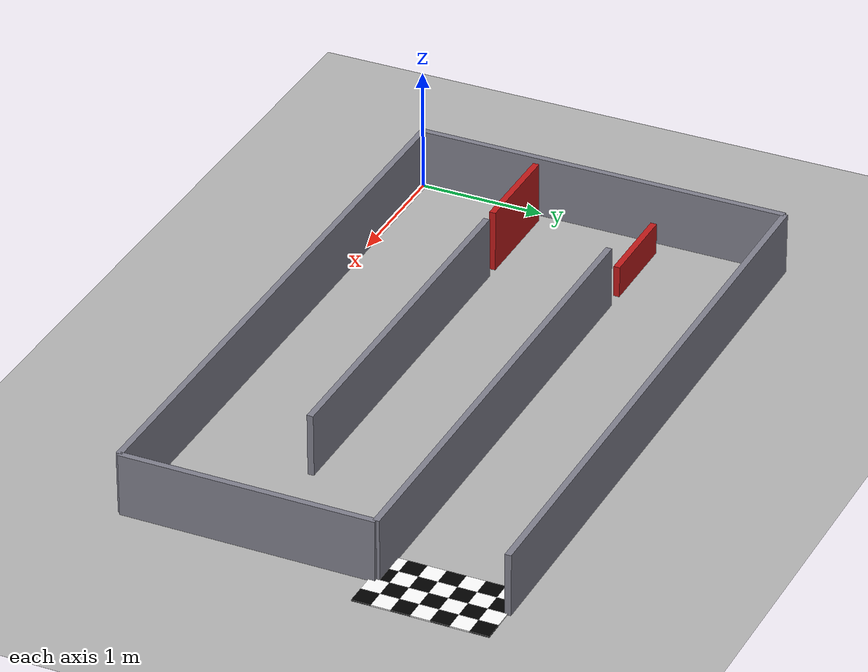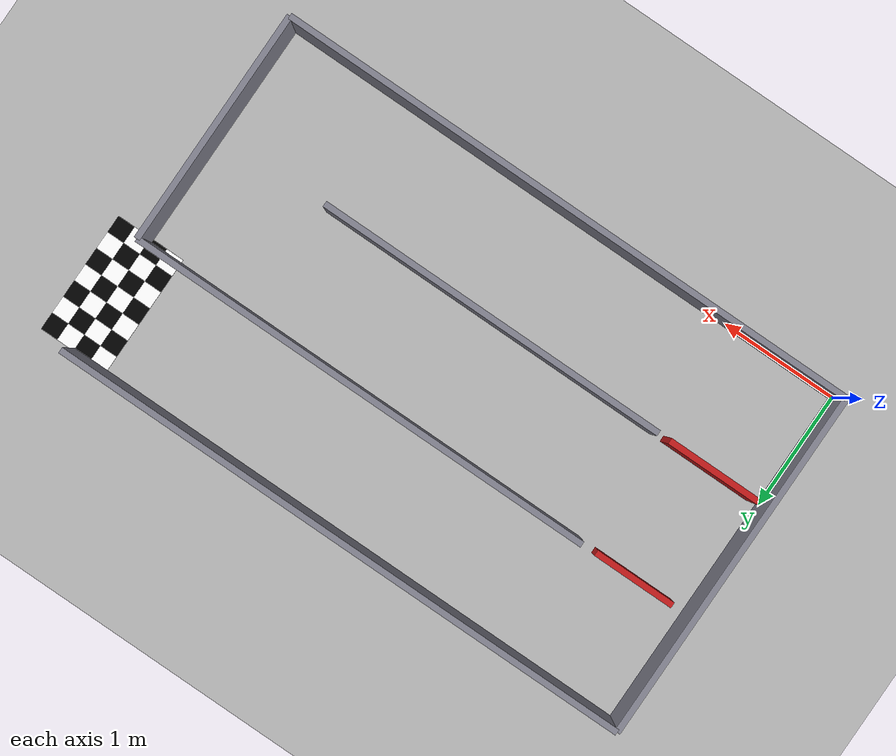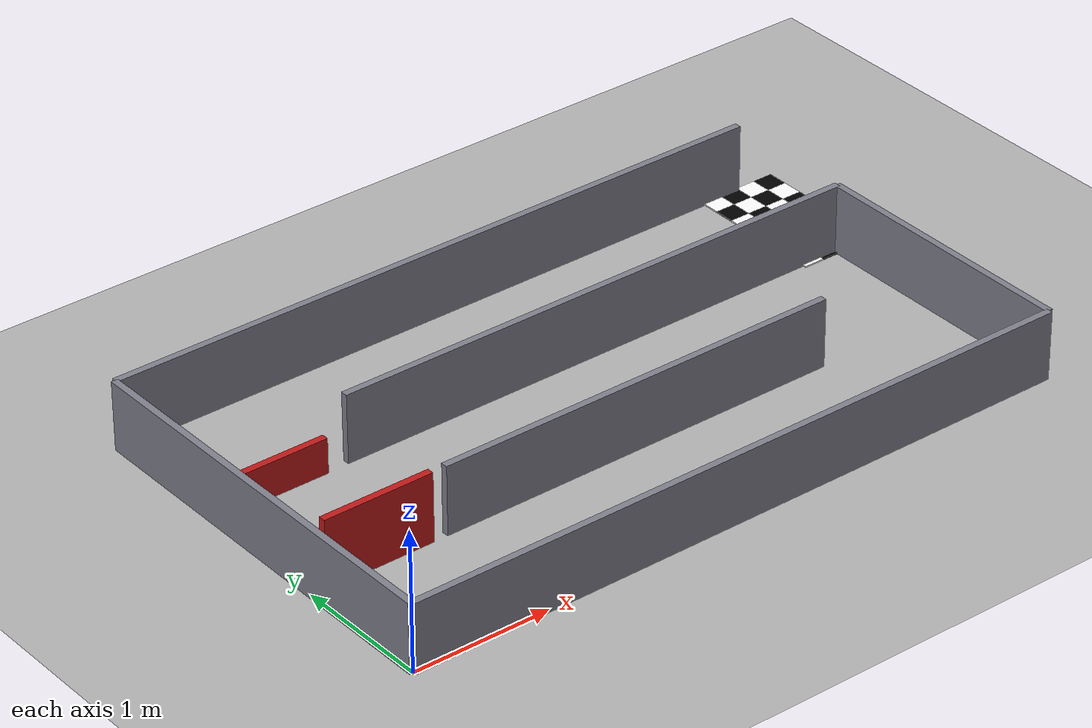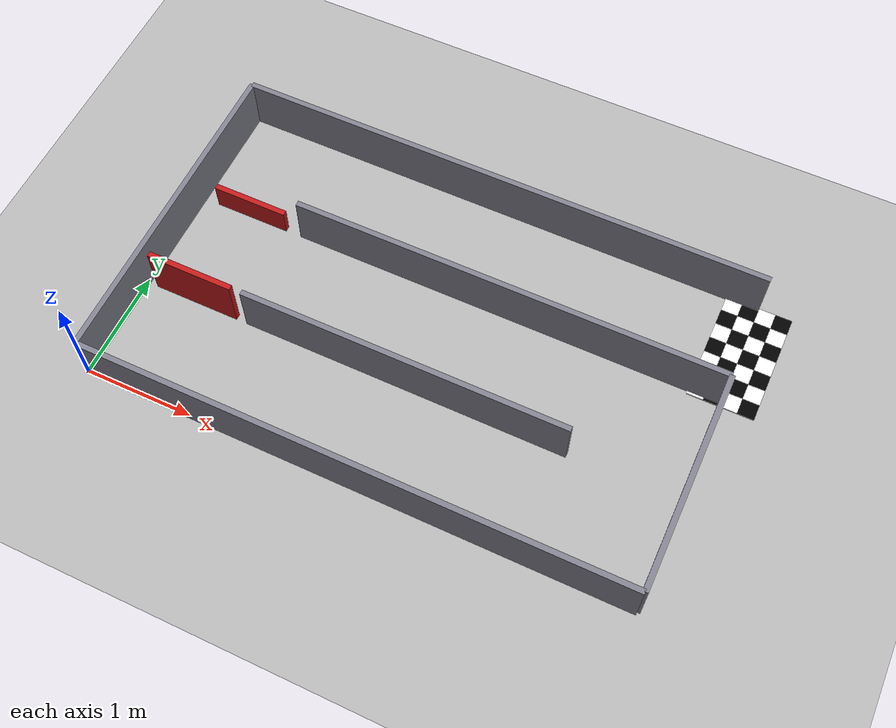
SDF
<?xml version="1.0" ?>
<sdf version="1.9">
  <world name="maze_world">

    <physics name="1ms" type="ignored">
      <max_step_size>0.001</max_step_size>
      <real_time_factor>1.0</real_time_factor>
    </physics>

    <plugin filename="gz-sim-physics-system" name="gz::sim::systems::Physics"/>
    <plugin filename="gz-sim-user-commands-system" name="gz::sim::systems::UserCommands"/>
    <plugin filename="gz-sim-scene-broadcaster-system" name="gz::sim::systems::SceneBroadcaster"/>
    <plugin filename="gz-sim-sensors-system" name="gz::sim::systems::Sensors">
      <render_engine>ogre2</render_engine>
    </plugin>
    <plugin filename="gz-sim-contact-system" name="gz::sim::systems::Contact"/>

    <light type="directional" name="sun">
      <cast_shadows>true</cast_shadows>
      <pose>0 0 10 0 0 0</pose>
      <diffuse>0.9 0.9 0.9 1</diffuse>
      <specular>0.3 0.3 0.3 1</specular>
      <attenuation>
        <range>1000</range>
        <constant>0.9</constant>
        <linear>0.01</linear>
        <quadratic>0.001</quadratic>
      </attenuation>
      <direction>-0.5 0.2 -0.9</direction>
    </light>

    <model name="ground_plane">
      <static>true</static>
      <link name="link">
        <collision name="collision">
          <geometry><plane><normal>0 0 1</normal><size>20 20</size></plane></geometry>
        </collision>
        <visual name="visual">
          <geometry><plane><normal>0 0 1</normal><size>20 20</size></plane></geometry>
          <material>
            <ambient>0.7 0.7 0.7 1</ambient>
            <diffuse>0.7 0.7 0.7 1</diffuse>
          </material>
        </visual>
      </link>
    </model>

    <model name="wall_south"><static>true</static>
      <pose>2.5 0 0.25 0 0 0</pose>
      <link name="link">
        <collision name="collision"><geometry><box><size>5.0 0.05 0.5</size></box></geometry></collision>
        <visual name="visual"><geometry><box><size>5.0 0.05 0.5</size></box></geometry>
          <material><ambient>0.5 0.5 0.55 1</ambient><diffuse>0.5 0.5 0.55 1</diffuse></material>
        </visual>
      </link>
    </model>

    <model name="wall_north"><static>true</static>
      <pose>2.5 3 0.25 0 0 0</pose>
      <link name="link">
        <collision name="collision"><geometry><box><size>5.0 0.05 0.5</size></box></geometry></collision>
        <visual name="visual"><geometry><box><size>5.0 0.05 0.5</size></box></geometry>
          <material><ambient>0.5 0.5 0.55 1</ambient><diffuse>0.5 0.5 0.55 1</diffuse></material>
        </visual>
      </link>
    </model>

    <model name="wall_west"><static>true</static>
      <pose>0 1.5 0.25 0 0 0</pose>
      <link name="link">
        <collision name="collision"><geometry><box><size>0.05 3.0 0.5</size></box></geometry></collision>
        <visual name="visual"><geometry><box><size>0.05 3.0 0.5</size></box></geometry>
          <material><ambient>0.5 0.5 0.55 1</ambient><diffuse>0.5 0.5 0.55 1</diffuse></material>
        </visual>
      </link>
    </model>

    <!-- East wall only spans y:0-2; y:2-3 is the exit doorway (gate_3) -->
    <model name="wall_east_lower"><static>true</static>
      <pose>5 1.0 0.25 0 0 0</pose>
      <link name="link">
        <collision name="collision"><geometry><box><size>0.05 2.0 0.5</size></box></geometry></collision>
        <visual name="visual"><geometry><box><size>0.05 2.0 0.5</size></box></geometry>
          <material><ambient>0.5 0.5 0.55 1</ambient><diffuse>0.5 0.5 0.55 1</diffuse></material>
        </visual>
      </link>
    </model>

    <!-- Partition between corridor 1 and 2, spans x:0-4; x:4-5 gap = gate_1 -->
    <model name="partition_1"><static>true</static>
      <pose>2.5 1 0.25 0 0 0</pose>
      <link name="link">
        <collision name="collision"><geometry><box><size>3.0 0.05 0.5</size></box></geometry></collision>
        <visual name="visual"><geometry><box><size>3.0 0.05 0.5</size></box></geometry>
          <material><ambient>0.5 0.5 0.55 1</ambient><diffuse>0.5 0.5 0.55 1</diffuse></material>
        </visual>
      </link>
    </model>

    <!-- Partition between corridor 2 and 3, spans x:1-5; x:0-1 gap = gate_2 -->
    <model name="partition_2"><static>true</static>
      <pose>3.0 2 0.25 0 0 0</pose>
      <link name="link">
        <collision name="collision"><geometry><box><size>4.0 0.05 0.5</size></box></geometry></collision>
        <visual name="visual"><geometry><box><size>4.0 0.05 0.5</size></box></geometry>
          <material><ambient>0.5 0.5 0.55 1</ambient><diffuse>0.5 0.5 0.55 1</diffuse></material>
        </visual>
      </link>
    </model>

    <model name="retractable_wall_1">
      <pose>0.5 1 0.25 0 0 0</pose>
      <link name="wall_link">
        <inertial>
          <mass>5.0</mass>
          <inertia><ixx>0.105</ixx><iyy>0.521</iyy><izz>0.418</izz><ixy>0</ixy><ixz>0</ixz><iyz>0</iyz></inertia>
        </inertial>
        <collision name="collision"><geometry><box><size>0.8 0.05 0.5</size></box></geometry></collision>
        <visual name="visual"><geometry><box><size>0.8 0.05 0.5</size></box></geometry>
          <material><ambient>0.75 0.1 0.1 1</ambient><diffuse>0.75 0.1 0.1 1</diffuse></material>
        </visual>
      </link>
      <joint name="wall_1_joint" type="prismatic">
        <parent>world</parent>
        <child>wall_link</child>
        <axis>
          <xyz>0 0 1</xyz>
          <limit><lower>0.0</lower><upper>1.0</upper><effort>200</effort><velocity>0.5</velocity></limit>
          <dynamics><damping>5.0</damping></dynamics>
        </axis>
      </joint>
      <plugin filename="gz-sim-joint-position-controller-system" name="gz::sim::systems::JointPositionController">
        <joint_name>wall_1_joint</joint_name>
        <topic>/model/retractable_wall_1/joint/wall_1_joint/cmd_pos</topic>
        <initial_position>0.0</initial_position>
        <p_gain>60</p_gain>
        <i_gain>0.05</i_gain>
        <d_gain>5</d_gain>
        <i_max>10</i_max>
        <i_min>-10</i_min>
        <cmd_max>200</cmd_max>
        <cmd_min>-200</cmd_min>
      </plugin>
    </model>

    <model name="retractable_wall_2">
      <pose>0.5 2 0 0 0 0</pose>
      <link name="wall_link">
        <inertial>
          <mass>5.0</mass>
          <inertia><ixx>0.105</ixx><iyy>0.521</iyy><izz>0.418</izz><ixy>0</ixy><ixz>0</ixz><iyz>0</iyz></inertia>
        </inertial>
        <collision name="collision"><geometry><box><size>0.7 0.05 0.5</size></box></geometry></collision>
        <visual name="visual"><geometry><box><size>0.7 0.05 0.5</size></box></geometry>
          <material><ambient>0.75 0.1 0.1 1</ambient><diffuse>0.75 0.1 0.1 1</diffuse></material>
        </visual>
      </link>
      <joint name="wall_2_joint" type="prismatic">
        <parent>world</parent>
        <child>wall_link</child>
        <axis>
          <xyz>0 0 1</xyz>
          <limit><lower>0.0</lower><upper>1.0</upper><effort>200</effort><velocity>0.5</velocity></limit>
          <dynamics><damping>5.0</damping></dynamics>
        </axis>
      </joint>
      <plugin filename="gz-sim-joint-position-controller-system" name="gz::sim::systems::JointPositionController">
        <joint_name>wall_2_joint</joint_name>
        <topic>/model/retractable_wall_2/joint/wall_2_joint/cmd_pos</topic>
        <initial_position>5</initial_position>
        <p_gain>60</p_gain>
        <i_gain>0.05</i_gain>
        <d_gain>5</d_gain>
        <i_max>10</i_max>
        <i_min>-10</i_min>
        <cmd_max>200</cmd_max>
        <cmd_min>-200</cmd_min>
      </plugin>
    </model>

    <!-- gate_3 blocks the exit doorway itself; oriented along Y -->
        <!-- Column 1 -->
    <model name="finish_1_1"><static>true</static>
      <pose>4.775 2.475 0.006 0 0 0</pose>
      <link name="link"><visual name="visual">
        <geometry><box><size>0.15 0.15 0.01</size></box></geometry>
        <material><ambient>0 0 0 1</ambient><diffuse>0 0 0 1</diffuse></material>
      </visual></link>
    </model>

    <model name="finish_1_2"><static>true</static>
      <pose>4.925 2.475 0.006 0 0 0</pose>
      <link name="link"><visual name="visual">
        <geometry><box><size>0.15 0.15 0.01</size></box></geometry>
        <material><ambient>1 1 1 1</ambient><diffuse>1 1 1 1</diffuse></material>
      </visual></link>
    </model>

    <model name="finish_1_3"><static>true</static>
      <pose>5.075 2.475 0.006 0 0 0</pose>
      <link name="link"><visual name="visual">
        <geometry><box><size>0.15 0.15 0.01</size></box></geometry>
        <material><ambient>0 0 0 1</ambient><diffuse>0 0 0 1</diffuse></material>
      </visual></link>
    </model>

    <model name="finish_1_4"><static>true</static>
      <pose>5.225 2.475 0.006 0 0 0</pose>
      <link name="link"><visual name="visual">
        <geometry><box><size>0.15 0.15 0.01</size></box></geometry>
        <material><ambient>1 1 1 1</ambient><diffuse>1 1 1 1</diffuse></material>
      </visual></link>
    </model>

    <!-- Column 2 -->
    <model name="finish_2_1"><static>true</static>
      <pose>4.775 2.625 0.006 0 0 0</pose>
      <link name="link"><visual name="visual">
        <geometry><box><size>0.15 0.15 0.01</size></box></geometry>
        <material><ambient>1 1 1 1</ambient><diffuse>1 1 1 1</diffuse></material>
      </visual></link>
    </model>

    <model name="finish_2_2"><static>true</static>
      <pose>4.925 2.625 0.006 0 0 0</pose>
      <link name="link"><visual name="visual">
        <geometry><box><size>0.15 0.15 0.01</size></box></geometry>
        <material><ambient>0 0 0 1</ambient><diffuse>0 0 0 1</diffuse></material>
      </visual></link>
    </model>

    <model name="finish_2_3"><static>true</static>
      <pose>5.075 2.625 0.006 0 0 0</pose>
      <link name="link"><visual name="visual">
        <geometry><box><size>0.15 0.15 0.01</size></box></geometry>
        <material><ambient>1 1 1 1</ambient><diffuse>1 1 1 1</diffuse></material>
      </visual></link>
    </model>

    <model name="finish_2_4"><static>true</static>
      <pose>5.225 2.625 0.006 0 0 0</pose>
      <link name="link"><visual name="visual">
        <geometry><box><size>0.15 0.15 0.01</size></box></geometry>
        <material><ambient>0 0 0 1</ambient><diffuse>0 0 0 1</diffuse></material>
      </visual></link>
    </model>

    <!-- Column 3 -->
    <model name="finish_3_1"><static>true</static>
      <pose>4.775 2.775 0.006 0 0 0</pose>
      <link name="link"><visual name="visual">
        <geometry><box><size>0.15 0.15 0.01</size></box></geometry>
        <material><ambient>0 0 0 1</ambient><diffuse>0 0 0 1</diffuse></material>
      </visual></link>
    </model>

    <model name="finish_3_2"><static>true</static>
      <pose>4.925 2.775 0.006 0 0 0</pose>
      <link name="link"><visual name="visual">
        <geometry><box><size>0.15 0.15 0.01</size></box></geometry>
        <material><ambient>1 1 1 1</ambient><diffuse>1 1 1 1</diffuse></material>
      </visual></link>
    </model>

    <model name="finish_3_3"><static>true</static>
      <pose>5.075 2.775 0.006 0 0 0</pose>
      <link name="link"><visual name="visual">
        <geometry><box><size>0.15 0.15 0.01</size></box></geometry>
        <material><ambient>0 0 0 1</ambient><diffuse>0 0 0 1</diffuse></material>
      </visual></link>
    </model>

    <model name="finish_3_4"><static>true</static>
      <pose>5.225 2.775 0.006 0 0 0</pose>
      <link name="link"><visual name="visual">
        <geometry><box><size>0.15 0.15 0.01</size></box></geometry>
        <material><ambient>1 1 1 1</ambient><diffuse>1 1 1 1</diffuse></material>
      </visual></link>
    </model>

    <!-- Column 4 -->
    <model name="finish_4_1"><static>true</static>
      <pose>4.775 2.925 0.006 0 0 0</pose>
      <link name="link"><visual name="visual">
        <geometry><box><size>0.15 0.15 0.01</size></box></geometry>
        <material><ambient>1 1 1 1</ambient><diffuse>1 1 1 1</diffuse></material>
      </visual></link>
    </model>

    <model name="finish_4_2"><static>true</static>
      <pose>4.925 2.925 0.006 0 0 0</pose>
      <link name="link"><visual name="visual">
        <geometry><box><size>0.15 0.15 0.01</size></box></geometry>
        <material><ambient>0 0 0 1</ambient><diffuse>0 0 0 1</diffuse></material>
      </visual></link>
    </model>

    <model name="finish_4_3"><static>true</static>
      <pose>5.075 2.925 0.006 0 0 0</pose>
      <link name="link"><visual name="visual">
        <geometry><box><size>0.15 0.15 0.01</size></box></geometry>
        <material><ambient>1 1 1 1</ambient><diffuse>1 1 1 1</diffuse></material>
      </visual></link>
    </model>

    <model name="finish_4_4"><static>true</static>
      <pose>5.225 2.925 0.006 0 0 0</pose>
      <link name="link"><visual name="visual">
        <geometry><box><size>0.15 0.15 0.01</size></box></geometry>
        <material><ambient>0 0 0 1</ambient><diffuse>0 0 0 1</diffuse></material>
      </visual></link>
    </model>
    <!-- Column 5 -->
<model name="finish_5_1"><static>true</static>
  <pose>4.775 2.325 0.006 0 0 0</pose>
  <link name="link"><visual name="visual">
    <geometry><box><size>0.15 0.15 0.01</size></box></geometry>
    <material><ambient>1 1 1 1</ambient><diffuse>1 1 1 1</diffuse></material>
  </visual></link>
</model>

<model name="finish_5_2"><static>true</static>
  <pose>4.925 2.325 0.006 0 0 0</pose>
  <link name="link"><visual name="visual">
    <geometry><box><size>0.15 0.15 0.01</size></box></geometry>
    <material><ambient>0 0 0 1</ambient><diffuse>0 0 0 1</diffuse></material>
  </visual></link>
</model>

<model name="finish_5_3"><static>true</static>
  <pose>5.075 2.325 0.006 0 0 0</pose>
  <link name="link"><visual name="visual">
    <geometry><box><size>0.15 0.15 0.01</size></box></geometry>
    <material><ambient>1 1 1 1</ambient><diffuse>1 1 1 1</diffuse></material>
  </visual></link>
</model>

<model name="finish_5_4"><static>true</static>
  <pose>5.225 2.325 0.006 0 0 0</pose>
  <link name="link"><visual name="visual">
    <geometry><box><size>0.15 0.15 0.01</size></box></geometry>
    <material><ambient>0 0 0 1</ambient><diffuse>0 0 0 1</diffuse></material>
  </visual></link>
</model>

<!-- Column 6 -->
<model name="finish_6_1"><static>true</static>
  <pose>4.775 2.175 0.006 0 0 0</pose>
  <link name="link"><visual name="visual">
    <geometry><box><size>0.15 0.15 0.01</size></box></geometry>
    <material><ambient>0 0 0 1</ambient><diffuse>0 0 0 1</diffuse></material>
  </visual></link>
</model>

<model name="finish_6_2"><static>true</static>
  <pose>4.925 2.175 0.006 0 0 0</pose>
  <link name="link"><visual name="visual">
    <geometry><box><size>0.15 0.15 0.01</size></box></geometry>
    <material><ambient>1 1 1 1</ambient><diffuse>1 1 1 1</diffuse></material>
  </visual></link>
</model>

<model name="finish_6_3"><static>true</static>
  <pose>5.075 2.175 0.006 0 0 0</pose>
  <link name="link"><visual name="visual">
    <geometry><box><size>0.15 0.15 0.01</size></box></geometry>
    <material><ambient>0 0 0 1</ambient><diffuse>0 0 0 1</diffuse></material>
  </visual></link>
</model>

<model name="finish_6_4"><static>true</static>
  <pose>5.225 2.175 0.006 0 0 0</pose>
  <link name="link"><visual name="visual">
    <geometry><box><size>0.15 0.15 0.01</size></box></geometry>
    <material><ambient>1 1 1 1</ambient><diffuse>1 1 1 1</diffuse></material>
  </visual></link>
</model>

<!-- Column 7 -->
<model name="finish_7_1"><static>true</static>
  <pose>4.775 2.025 0.006 0 0 0</pose>
  <link name="link"><visual name="visual">
    <geometry><box><size>0.15 0.15 0.01</size></box></geometry>
    <material><ambient>1 1 1 1</ambient><diffuse>1 1 1 1</diffuse></material>
  </visual></link>
</model>

<model name="finish_7_2"><static>true</static>
  <pose>4.925 2.025 0.006 0 0 0</pose>
  <link name="link"><visual name="visual">
    <geometry><box><size>0.15 0.15 0.01</size></box></geometry>
    <material><ambient>0 0 0 1</ambient><diffuse>0 0 0 1</diffuse></material>
  </visual></link>
</model>

<model name="finish_7_3"><static>true</static>
  <pose>5.075 2.025 0.006 0 0 0</pose>
  <link name="link"><visual name="visual">
    <geometry><box><size>0.15 0.15 0.01</size></box></geometry>
    <material><ambient>1 1 1 1</ambient><diffuse>1 1 1 1</diffuse></material>
  </visual></link>
</model>

<model name="finish_7_4"><static>true</static>
  <pose>5.225 2.025 0.006 0 0 0</pose>
  <link name="link"><visual name="visual">
    <geometry><box><size>0.15 0.15 0.01</size></box></geometry>
    <material><ambient>0 0 0 1</ambient><diffuse>0 0 0 1</diffuse></material>
  </visual></link>
</model>

        <model name="finish_trigger">
          <static>false</static>

          <pose>5.0 2.475 0.01 0 0 0</pose>

          <link name="link">
            <gravity>false</gravity>

            <collision name="collision">
              <geometry>
                <box>
                  <size>0.6 1.05 0.002</size>
                </box>
              </geometry>
            </collision>

            <sensor name="sensor_contact" type="contact">
              <contact>
                <collision>collision</collision>
              </contact>
            </sensor>
          </link>

          <plugin
              filename="gz-sim-touchplugin-system"
              name="gz::sim::systems::TouchPlugin">
            <target>robot</target>
            <namespace>finish_robot</namespace>
            <time>0.05</time>
            <enabled>true</enabled>
          </plugin>

          <plugin
              filename="gz-sim-touchplugin-system"
              name="gz::sim::systems::TouchPlugin">
            <target>burger</target>
            <namespace>finish_burger</namespace>
            <time>0.05</time>
            <enabled>true</enabled>
          </plugin>
        </model>
  </world>
</sdf>
